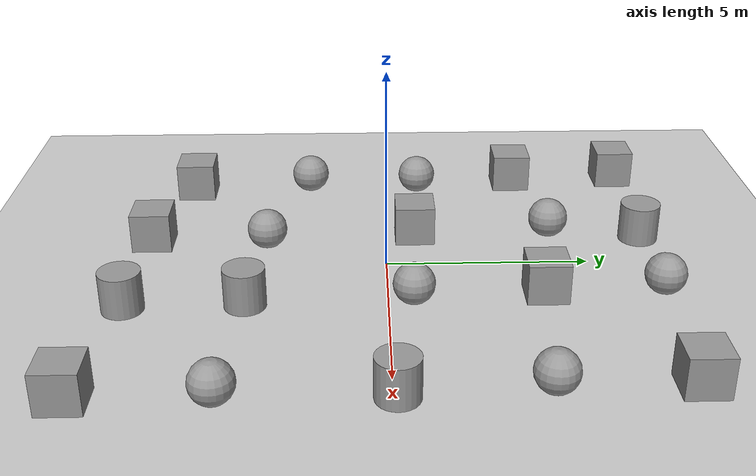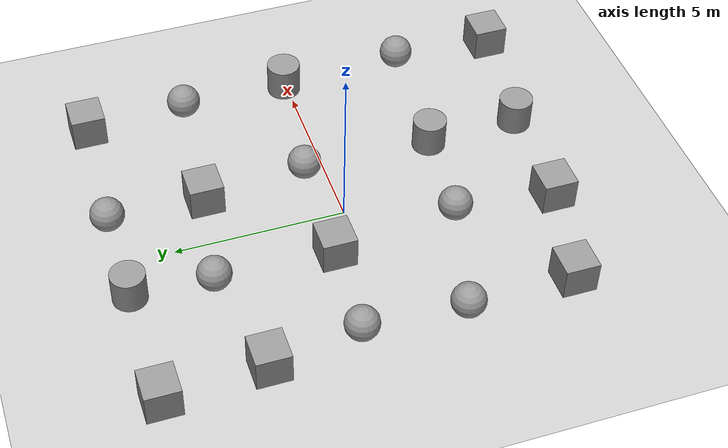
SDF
<sdf version="1.7">
 <world name="default">
  <light name="sun" type="directional">
   <pose>0 0 10 0 -0 0</pose>
   <diffuse>0.8 0.8 0.8 1</diffuse>
   <specular>0.2 0.2 0.2 1</specular>
   <attenuation>
    <range>1000</range>
    <constant>0.9</constant>
    <linear>0.01</linear>
    <quadratic>0.001</quadratic>
   </attenuation>
   <direction>-0.5 0.1 -0.9</direction>
   <spot><inner_angle>0</inner_angle><outer_angle>0</outer_angle><falloff>0</falloff></spot>
  </light>
  <model name="ground_plane">
   <static>1</static>
   <link name="link">
    <collision name="collision">
     <geometry><plane><normal>0 0 1</normal><size>100 100</size></plane></geometry>
     <surface><friction><ode><mu>100</mu><mu2>50</mu2></ode></friction></surface>
    </collision>
    <visual name="visual">
     <cast_shadows>0</cast_shadows>
     <geometry><plane><normal>0 0 1</normal><size>100 100</size></plane></geometry>
     <material>
      <script><uri>file://media/materials/scripts/gazebo.material</uri><name>Gazebo/Grey</name></script>
     </material>
    </visual>
   </link>
  </model>
  <gravity>0 0 -9.8</gravity>
  <magnetic_field>6e-06 2.3e-05 -4.2e-05</magnetic_field>
  <atmosphere type="adiabatic"/>
  <physics name="default_physics" default="0" type="ode">
   <max_step_size>0.001</max_step_size>
   <real_time_factor>1</real_time_factor>
   <real_time_update_rate>1000</real_time_update_rate>
  </physics>
  <scene><ambient>0.4 0.4 0.4 1</ambient><background>0.7 0.7 0.7 1</background><shadows>1</shadows></scene>
  <spherical_coordinates>
   <surface_model>EARTH_WGS84</surface_model>
   <latitude_deg>0</latitude_deg>
   <longitude_deg>0</longitude_deg>
   <elevation>0</elevation>
   <heading_deg>0</heading_deg>
  </spherical_coordinates>
  <model name="unit_box">
   <pose>5.42521 6.34964 0.499995 -1e-05 -0 -0</pose>
   <link name="link">
    <inertial>
     <mass>1</mass>
     <inertia>
      <ixx>0.166667</ixx>
      <ixy>0</ixy>
      <ixz>0</ixz>
      <iyy>0.166667</iyy>
      <iyz>0</iyz>
      <izz>0.166667</izz>
     </inertia>
    </inertial>
    <collision name="collision"><geometry><box><size>1 1 1</size></box></geometry></collision>
    <visual name="visual">
     <geometry><box><size>1 1 1</size></box></geometry>
     <material>
      <script><name>Gazebo/Grey</name><uri>file://media/materials/scripts/gazebo.material</uri></script>
     </material>
    </visual>
   </link>
  </model>
  <model name="unit_sphere">
   <pose>5.50392 3.32988 0.5 0 -0 0</pose>
   <link name="link">
    <inertial>
     <mass>1</mass>
     <inertia><ixx>0.1</ixx><ixy>0</ixy><ixz>0</ixz><iyy>0.1</iyy><iyz>0</iyz><izz>0.1</izz></inertia>
    </inertial>
    <collision name="collision"><geometry><sphere><radius>0.5</radius></sphere></geometry></collision>
    <visual name="visual">
     <geometry><sphere><radius>0.5</radius></sphere></geometry>
     <material>
      <script><name>Gazebo/Grey</name><uri>file://media/materials/scripts/gazebo.material</uri></script>
     </material>
    </visual>
   </link>
  </model>
  <model name="unit_cylinder">
   <pose>5.64008 0.093763 0.499998 3e-06 -2e-06 0</pose>
   <link name="link">
    <inertial>
     <mass>1</mass>
     <inertia><ixx>0.145833</ixx><ixy>0</ixy><ixz>0</ixz><iyy>0.145833</iyy><iyz>0</iyz><izz>0.125</izz></inertia>
    </inertial>
    <collision name="collision">
     <geometry><cylinder><radius>0.5</radius><length>1</length></cylinder></geometry>
    </collision>
    <visual name="visual">
     <geometry><cylinder><radius>0.5</radius><length>1</length></cylinder></geometry>
     <material>
      <script><name>Gazebo/Grey</name><uri>file://media/materials/scripts/gazebo.material</uri></script>
     </material>
    </visual>
   </link>
  </model>
  <model name="unit_sphere_0">
   <pose>5.71237 -3.63521 0.5 0 -0 0</pose>
   <link name="link">
    <inertial>
     <mass>1</mass>
     <inertia><ixx>0.1</ixx><ixy>0</ixy><ixz>0</ixz><iyy>0.1</iyy><iyz>0</iyz><izz>0.1</izz></inertia>
    </inertial>
    <collision name="collision"><geometry><sphere><radius>0.5</radius></sphere></geometry></collision>
    <visual name="visual">
     <geometry><sphere><radius>0.5</radius></sphere></geometry>
     <material>
      <script><name>Gazebo/Grey</name><uri>file://media/materials/scripts/gazebo.material</uri></script>
     </material>
    </visual>
   </link>
  </model>
  <model name="unit_box_0">
   <pose>5.62851 -6.63056 0.499995 -1e-05 -0 -0</pose>
   <link name="link">
    <inertial>
     <mass>1</mass>
     <inertia>
      <ixx>0.166667</ixx>
      <ixy>0</ixy>
      <ixz>0</ixz>
      <iyy>0.166667</iyy>
      <iyz>0</iyz>
      <izz>0.166667</izz>
     </inertia>
    </inertial>
    <collision name="collision"><geometry><box><size>1 1 1</size></box></geometry></collision>
    <visual name="visual">
     <geometry><box><size>1 1 1</size></box></geometry>
     <material>
      <script><name>Gazebo/Grey</name><uri>file://media/materials/scripts/gazebo.material</uri></script>
     </material>
    </visual>
   </link>
  </model>
  <model name="unit_sphere_1">
   <pose>1.54722 6.55582 0.5 0 -0 0</pose>
   <link name="link">
    <inertial>
     <mass>1</mass>
     <inertia><ixx>0.1</ixx><ixy>0</ixy><ixz>0</ixz><iyy>0.1</iyy><iyz>0</iyz><izz>0.1</izz></inertia>
    </inertial>
    <collision name="collision"><geometry><sphere><radius>0.5</radius></sphere></geometry></collision>
    <visual name="visual">
     <geometry><sphere><radius>0.5</radius></sphere></geometry>
     <material>
      <script><name>Gazebo/Grey</name><uri>file://media/materials/scripts/gazebo.material</uri></script>
     </material>
    </visual>
   </link>
  </model>
  <model name="unit_cylinder_0">
   <pose>-1.25266 6.56029 0.499998 3e-06 -3e-06 0</pose>
   <link name="link">
    <inertial>
     <mass>1</mass>
     <inertia><ixx>0.145833</ixx><ixy>0</ixy><ixz>0</ixz><iyy>0.145833</iyy><iyz>0</iyz><izz>0.125</izz></inertia>
    </inertial>
    <collision name="collision">
     <geometry><cylinder><radius>0.5</radius><length>1</length></cylinder></geometry>
    </collision>
    <visual name="visual">
     <geometry><cylinder><radius>0.5</radius><length>1</length></cylinder></geometry>
     <material>
      <script><name>Gazebo/Grey</name><uri>file://media/materials/scripts/gazebo.material</uri></script>
     </material>
    </visual>
   </link>
  </model>
  <model name="unit_box_1">
   <pose>-4.96706 6.58819 0.499995 0 1e-05 0</pose>
   <link name="link">
    <inertial>
     <mass>1</mass>
     <inertia>
      <ixx>0.166667</ixx>
      <ixy>0</ixy>
      <ixz>0</ixz>
      <iyy>0.166667</iyy>
      <iyz>0</iyz>
      <izz>0.166667</izz>
     </inertia>
    </inertial>
    <collision name="collision"><geometry><box><size>1 1 1</size></box></geometry></collision>
    <visual name="visual">
     <geometry><box><size>1 1 1</size></box></geometry>
     <material>
      <script><name>Gazebo/Grey</name><uri>file://media/materials/scripts/gazebo.material</uri></script>
     </material>
    </visual>
   </link>
  </model>
  <model name="unit_sphere_2">
   <pose>1.85565 0.598799 0.5 0 -0 0</pose>
   <link name="link">
    <inertial>
     <mass>1</mass>
     <inertia><ixx>0.1</ixx><ixy>0</ixy><ixz>0</ixz><iyy>0.1</iyy><iyz>0</iyz><izz>0.1</izz></inertia>
    </inertial>
    <collision name="collision"><geometry><sphere><radius>0.5</radius></sphere></geometry></collision>
    <visual name="visual">
     <geometry><sphere><radius>0.5</radius></sphere></geometry>
     <material>
      <script><name>Gazebo/Grey</name><uri>file://media/materials/scripts/gazebo.material</uri></script>
     </material>
    </visual>
   </link>
  </model>
  <model name="unit_box_2">
   <pose>1.58576 3.72491 0.499995 0 1e-05 0</pose>
   <link name="link">
    <inertial>
     <mass>1</mass>
     <inertia>
      <ixx>0.166667</ixx>
      <ixy>0</ixy>
      <ixz>0</ixz>
      <iyy>0.166667</iyy>
      <iyz>0</iyz>
      <izz>0.166667</izz>
     </inertia>
    </inertial>
    <collision name="collision"><geometry><box><size>1 1 1</size></box></geometry></collision>
    <visual name="visual">
     <geometry><box><size>1 1 1</size></box></geometry>
     <material>
      <script><name>Gazebo/Grey</name><uri>file://media/materials/scripts/gazebo.material</uri></script>
     </material>
    </visual>
   </link>
  </model>
  <model name="unit_cylinder_1">
   <pose>1.92043 -3.32966 0.499998 3e-06 -3e-06 0</pose>
   <link name="link">
    <inertial>
     <mass>1</mass>
     <inertia><ixx>0.145833</ixx><ixy>0</ixy><ixz>0</ixz><iyy>0.145833</iyy><iyz>0</iyz><izz>0.125</izz></inertia>
    </inertial>
    <collision name="collision">
     <geometry><cylinder><radius>0.5</radius><length>1</length></cylinder></geometry>
    </collision>
    <visual name="visual">
     <geometry><cylinder><radius>0.5</radius><length>1</length></cylinder></geometry>
     <material>
      <script><name>Gazebo/Grey</name><uri>file://media/materials/scripts/gazebo.material</uri></script>
     </material>
    </visual>
   </link>
  </model>
  <model name="unit_box_3">
   <pose>-1.5026 0.757065 0.499995 0 1e-05 0</pose>
   <link name="link">
    <inertial>
     <mass>1</mass>
     <inertia>
      <ixx>0.166667</ixx>
      <ixy>0</ixy>
      <ixz>0</ixz>
      <iyy>0.166667</iyy>
      <iyz>0</iyz>
      <izz>0.166667</izz>
     </inertia>
    </inertial>
    <collision name="collision"><geometry><box><size>1 1 1</size></box></geometry></collision>
    <visual name="visual">
     <geometry><box><size>1 1 1</size></box></geometry>
     <material>
      <script><name>Gazebo/Grey</name><uri>file://media/materials/scripts/gazebo.material</uri></script>
     </material>
    </visual>
   </link>
  </model>
  <model name="unit_sphere_3">
   <pose>-1.05094 -3.01046 0.5 0 -0 0</pose>
   <link name="link">
    <inertial>
     <mass>1</mass>
     <inertia><ixx>0.1</ixx><ixy>0</ixy><ixz>0</ixz><iyy>0.1</iyy><iyz>0</iyz><izz>0.1</izz></inertia>
    </inertial>
    <collision name="collision"><geometry><sphere><radius>0.5</radius></sphere></geometry></collision>
    <visual name="visual">
     <geometry><sphere><radius>0.5</radius></sphere></geometry>
     <material>
      <script><name>Gazebo/Grey</name><uri>file://media/materials/scripts/gazebo.material</uri></script>
     </material>
    </visual>
   </link>
  </model>
  <model name="unit_cylinder_2">
   <pose>2.01314 -6.14345 0.499992 -3e-06 4e-06 0</pose>
   <link name="link">
    <inertial>
     <mass>1</mass>
     <inertia><ixx>0.145833</ixx><ixy>0</ixy><ixz>0</ixz><iyy>0.145833</iyy><iyz>0</iyz><izz>0.125</izz></inertia>
    </inertial>
    <collision name="collision">
     <geometry><cylinder><radius>0.5</radius><length>1</length></cylinder></geometry>
    </collision>
    <visual name="visual">
     <geometry><cylinder><radius>0.5</radius><length>1</length></cylinder></geometry>
     <material>
      <script><name>Gazebo/Grey</name><uri>file://media/materials/scripts/gazebo.material</uri></script>
     </material>
    </visual>
   </link>
  </model>
  <model name="unit_box_4">
   <pose>-1.28428 -5.94377 0.499995 -1e-05 -0 -0</pose>
   <link name="link">
    <inertial>
     <mass>1</mass>
     <inertia>
      <ixx>0.166667</ixx>
      <ixy>0</ixy>
      <ixz>0</ixz>
      <iyy>0.166667</iyy>
      <iyz>0</iyz>
      <izz>0.166667</izz>
     </inertia>
    </inertial>
    <collision name="collision"><geometry><box><size>1 1 1</size></box></geometry></collision>
    <visual name="visual">
     <geometry><box><size>1 1 1</size></box></geometry>
     <material>
      <script><name>Gazebo/Grey</name><uri>file://media/materials/scripts/gazebo.material</uri></script>
     </material>
    </visual>
   </link>
  </model>
  <model name="unit_sphere_4">
   <pose>-1.51507 4.23288 0.5 0 -0 0</pose>
   <link name="link">
    <inertial>
     <mass>1</mass>
     <inertia><ixx>0.1</ixx><ixy>0</ixy><ixz>0</ixz><iyy>0.1</iyy><iyz>0</iyz><izz>0.1</izz></inertia>
    </inertial>
    <collision name="collision"><geometry><sphere><radius>0.5</radius></sphere></geometry></collision>
    <visual name="visual">
     <geometry><sphere><radius>0.5</radius></sphere></geometry>
     <material>
      <script><name>Gazebo/Grey</name><uri>file://media/materials/scripts/gazebo.material</uri></script>
     </material>
    </visual>
   </link>
  </model>
  <model name="unit_box_5">
   <pose>-4.77382 3.63132 0.499995 -1e-05 -0 -0</pose>
   <link name="link">
    <inertial>
     <mass>1</mass>
     <inertia>
      <ixx>0.166667</ixx>
      <ixy>0</ixy>
      <ixz>0</ixz>
      <iyy>0.166667</iyy>
      <iyz>0</iyz>
      <izz>0.166667</izz>
     </inertia>
    </inertial>
    <collision name="collision"><geometry><box><size>1 1 1</size></box></geometry></collision>
    <visual name="visual">
     <geometry><box><size>1 1 1</size></box></geometry>
     <material>
      <script><name>Gazebo/Grey</name><uri>file://media/materials/scripts/gazebo.material</uri></script>
     </material>
    </visual>
   </link>
  </model>
  <model name="unit_sphere_5">
   <pose>-4.39554 0.952667 0.5 0 -0 0</pose>
   <link name="link">
    <inertial>
     <mass>1</mass>
     <inertia><ixx>0.1</ixx><ixy>0</ixy><ixz>0</ixz><iyy>0.1</iyy><iyz>0</iyz><izz>0.1</izz></inertia>
    </inertial>
    <collision name="collision"><geometry><sphere><radius>0.5</radius></sphere></geometry></collision>
    <visual name="visual">
     <geometry><sphere><radius>0.5</radius></sphere></geometry>
     <material>
      <script><name>Gazebo/Grey</name><uri>file://media/materials/scripts/gazebo.material</uri></script>
     </material>
    </visual>
   </link>
  </model>
  <model name="unit_sphere_6">
   <pose>-4.51652 -2.03445 0.5 0 -0 0</pose>
   <link name="link">
    <inertial>
     <mass>1</mass>
     <inertia><ixx>0.1</ixx><ixy>0</ixy><ixz>0</ixz><iyy>0.1</iyy><iyz>0</iyz><izz>0.1</izz></inertia>
    </inertial>
    <collision name="collision"><geometry><sphere><radius>0.5</radius></sphere></geometry></collision>
    <visual name="visual">
     <geometry><sphere><radius>0.5</radius></sphere></geometry>
     <material>
      <script><name>Gazebo/Grey</name><uri>file://media/materials/scripts/gazebo.material</uri></script>
     </material>
    </visual>
   </link>
  </model>
  <model name="unit_box_6">
   <pose>-4.3629 -5.19517 0.5 0 -0 0</pose>
   <link name="link">
    <inertial>
     <mass>1</mass>
     <inertia>
      <ixx>0.166667</ixx>
      <ixy>0</ixy>
      <ixz>0</ixz>
      <iyy>0.166667</iyy>
      <iyz>0</iyz>
      <izz>0.166667</izz>
     </inertia>
    </inertial>
    <collision name="collision"><geometry><box><size>1 1 1</size></box></geometry></collision>
    <visual name="visual">
     <geometry><box><size>1 1 1</size></box></geometry>
     <material>
      <script><name>Gazebo/Grey</name><uri>file://media/materials/scripts/gazebo.material</uri></script>
     </material>
    </visual>
   </link>
  </model>
 </world>
</sdf>
